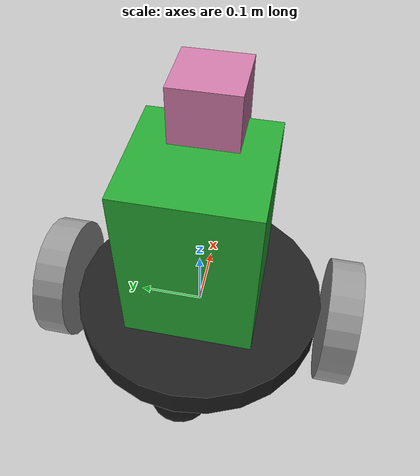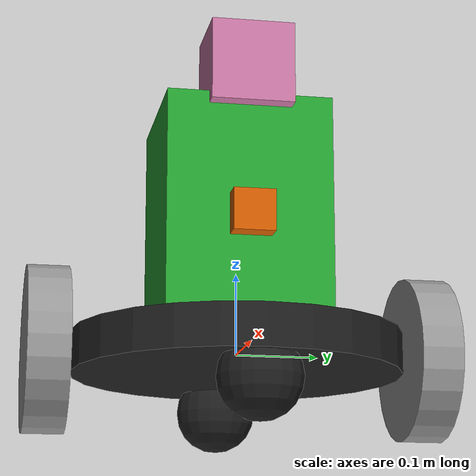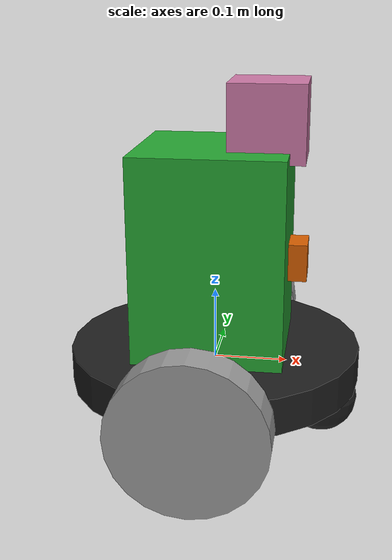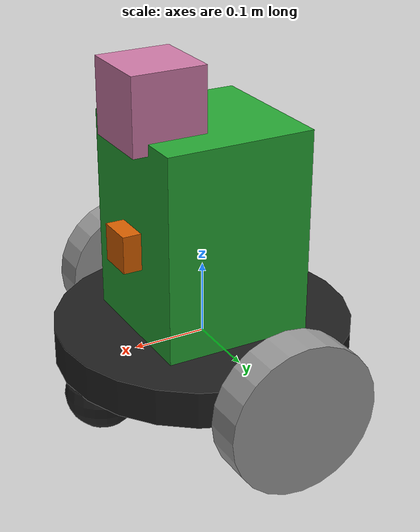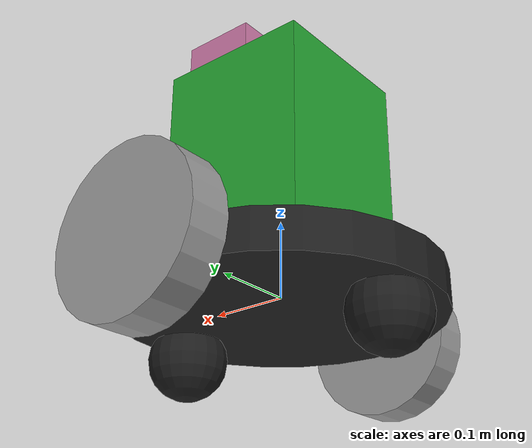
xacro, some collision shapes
<?xml version='1.0'?>

<robot name="navbot" xmlns:xacro="http://www.ros.org/wiki/xacro">

    <xacro:include filename="$(find udacity_bot)/urdf/udacity_bot.gazebo" />

    <gazebo reference="left_wheel">
      <material>Gazebo/Grey</material>
    </gazebo>

    <gazebo reference="right_wheel">
      <material>Gazebo/Grey</material>
    </gazebo>

    <gazebo reference="chassis">
          <material>Gazebo/Black</material>
        </gazebo>

    <gazebo reference="top_base">
          <material>Gazebo/Green</material>
    </gazebo>

    <gazebo reference="camera">
          <material>Gazebo/RustySteel</material>
    </gazebo>

  <link name="robot_footprint"></link>

  <joint name="robot_footprint_joint" type="fixed">
    <origin xyz="0 0 0" rpy="0 0 0" />
    <parent link="robot_footprint"/>
    <child link="chassis" />
  </joint>

  <link name='chassis'>
    <pose>0 0 0.1 0 0 0</pose>

    <inertial>
      <mass value="15.0"/>
      <origin xyz="0.0 0 0" rpy=" 0 0 0"/>
      <inertia
          ixx="0.1" ixy="0" ixz="0"
          iyy="0.1" iyz="0"
          izz="0.1"
      />
    </inertial>

    <collision name='collision'>
      <origin xyz="0 0 0" rpy=" 0 0 0"/>
      <geometry>
        <cylinder radius="0.4" length="0.05"/>
      </geometry>
    </collision>

    <visual name='chassis_visual'>
      <origin xyz="0 0 0" rpy=" 0 0 0"/>
      <geometry>
        <cylinder radius="0.2" length="0.05"/>
      </geometry>
      <material name="black"/>
    </visual>

    <collision name='back_caster_collision'>
      <origin xyz="-0.15 0 -0.05" rpy=" 0 0 0"/>
      <geometry>
        <sphere radius="0.0499"/>
      </geometry>
    </collision>

    <visual name='back_caster_visual'>
      <origin xyz="-0.15 0 -0.05" rpy=" 0 0 0"/>
      <geometry>
        <sphere radius="0.05"/>
      </geometry>
    </visual>

    <collision name='front_caster_collision'>
      <origin xyz="0.15 0 -0.05" rpy=" 0 0 0"/>
      <geometry>
        <sphere radius="0.0499"/>
      </geometry>
    </collision>

    <visual name='front_caster_visual'>
      <origin xyz="0.15 0 -0.05" rpy=" 0 0 0"/>
      <geometry>
        <sphere radius="0.05"/>
      </geometry>
    </visual>

  </link>

  <link name='left_wheel'>

    <inertial>
      <mass value="5.0"/>
      <origin xyz="0.0 0 0" rpy=" 0 0 0"/>
      <inertia
          ixx="0.1" ixy="0" ixz="0"
          iyy="0.1" iyz="0"
          izz="0.1"
      />
    </inertial>

    <collision name='left_wheel_collision'>
        <origin xyz="0 0 0" rpy="0 1.5707 1.5707"/>
        <geometry>
            <cylinder radius="0.1" length="0.05"/>
        </geometry>
    </collision>

    <visual name='left_wheel_visual'>

        <origin xyz="0 0 0" rpy="0 1.5707 1.5707"/>
        <geometry>
            <cylinder radius="0.1" length="0.05"/>
        </geometry>

        <material name="grey"/>

    </visual>

  </link>

  <link name='right_wheel'>

    <inertial>
      <mass value="5.0"/>
      <origin xyz="0.0 0 0" rpy=" 0 0 0"/>
      <inertia
          ixx="0.1" ixy="0" ixz="0"
          iyy="0.1" iyz="0"
          izz="0.1"
      />
    </inertial>

    <collision name='right_wheel_collision'>
        <origin xyz="0 0 0" rpy="0 1.5707 1.5707"/>
        <geometry>
            <cylinder radius="0.1" length="0.05"/>
        </geometry>
    </collision>

    <visual name='right_wheel_visual'>

        <origin xyz="0 0 0" rpy="0 1.5707 1.5707"/>
        <geometry>
            <cylinder radius="0.1" length="0.05"/>
        </geometry>

        <material name="grey"/>

    </visual>

  </link>

  <joint type="continuous" name="left_wheel_hinge">
    <origin xyz="0 0.23 0" rpy="0 0 0"/>
    <child link="left_wheel"/>
    <parent link="chassis"/>
    <axis xyz="0 1 0" rpy="0 0 0"/>
    <limit effort="10000" velocity="1000"/>
    <dynamics damping="1.0" friction="1.0"/>
  </joint>

  <joint type="continuous" name="right_wheel_hinge">
    <origin xyz="0 -0.23 0" rpy="0 0 0"/>
    <child link="right_wheel"/>
    <parent link="chassis"/>
    <axis xyz="0 1 0" rpy="0 0 0"/>
    <limit effort="10000" velocity="1000"/>
    <dynamics damping="1.0" friction="1.0"/>
  </joint>

    <link name='top_base'>

    <inertial>
      <mass value="2.0"/>
      <origin xyz="0.0 0 0" rpy=" 0 0 0"/>
      <inertia
          ixx="0.1" ixy="0" ixz="0"
          iyy="0.1" iyz="0"
          izz="0.1"
      />
    </inertial>

    <collision name='top_base_collision'>
        <origin xyz="0 0 0" rpy="0 0 0"/>
        <geometry>
            <box size="0.2 0.2 0.3"/>
        </geometry>
    </collision>

    <visual name='top_base_visual'>

        <origin xyz="0 0 0" rpy="0 0 0"/>
        <geometry>
            <box size="0.2 0.2 0.3"/>
        </geometry>

        <material name="green"/>

    </visual>

  </link>

    <joint type="fixed" name="top_base_joint">
        <origin xyz="0 0 0.15" rpy="0 0 0"/>
        <child link="top_base"/>
        <parent link="chassis"/>
    </joint>

    <link name='camera'>

        <inertial>
          <mass value="0.1"/>
          <origin xyz="0 0 0" rpy=" 0 0 0"/>
          <inertia
              ixx="1e-6" ixy="0" ixz="0"
              iyy="1e-6" iyz="0"
              izz="1e-6"
          />
        </inertial>

        <collision name='camera_collision'>
            <origin xyz="0 0 0" rpy="0 0 0"/>
            <geometry>
                <box size="0.05 0.05 0.05"/>
            </geometry>
        </collision>

        <visual name='camera_visual'>
            <origin xyz="0 0 0" rpy="0 0 0"/>
            <geometry>
                <box size="0.05 0.05 0.05"/>
            </geometry>
            <material name="steel"/>
        </visual>

    </link>

    <joint type="fixed" name="camera_joint">
        <origin xyz="0.1 0 0" rpy="0 0 0"/>
        <child link="camera"/>
        <parent link="top_base"/>
    </joint>

    <link name='hokuyo'>

        <inertial>
          <mass value="0.1"/>
          <origin xyz="0 0 0" rpy=" 0 0 0"/>
          <inertia
              ixx="1e-6" ixy="0" ixz="0"
              iyy="1e-6" iyz="0"
              izz="1e-6"
          />
        </inertial>

        <collision name='hokuyo_collision'>
            <origin xyz="0 0 0" rpy="0 0 0"/>
            <geometry>
                <box size="0.1 0.1 0.1"/>
            </geometry>
        </collision>

        <visual name='hokuyo_visual'>
            <origin xyz="0 0 0" rpy="0 0 0"/>
            <geometry>
                <mesh filename="package://udacity_bot/meshes/hokuyo.dae"/>
            </geometry>
        </visual>

    </link>

    <joint type="fixed" name="hokuyo_joint">
        <origin xyz="0.07 0 0.185" rpy="0 0 0"/>
        <child link="hokuyo"/>
        <parent link="top_base"/>
    </joint>

</robot>
